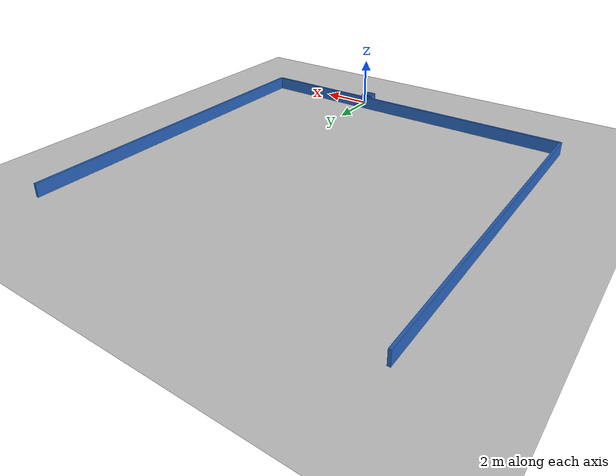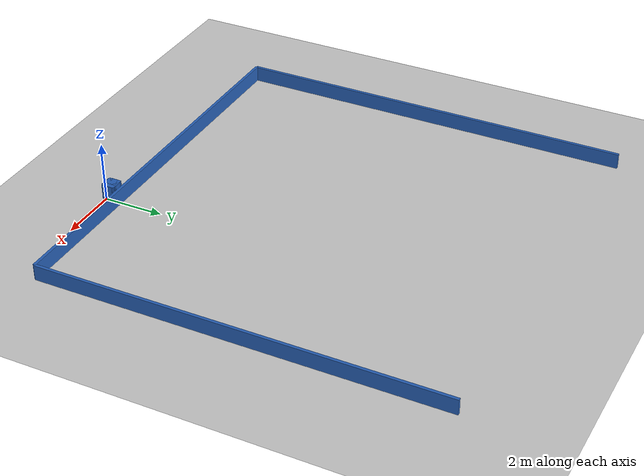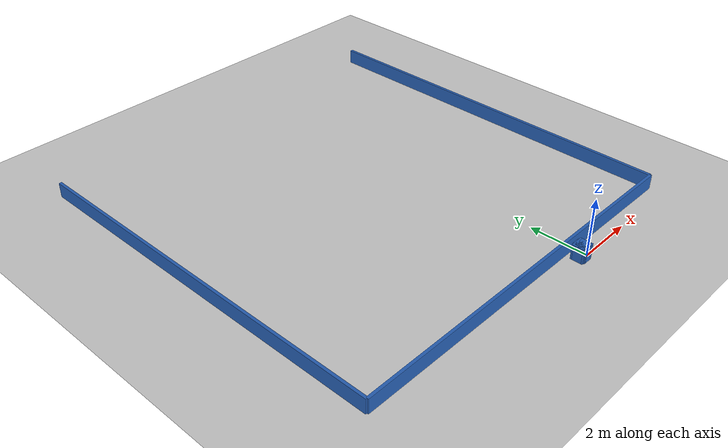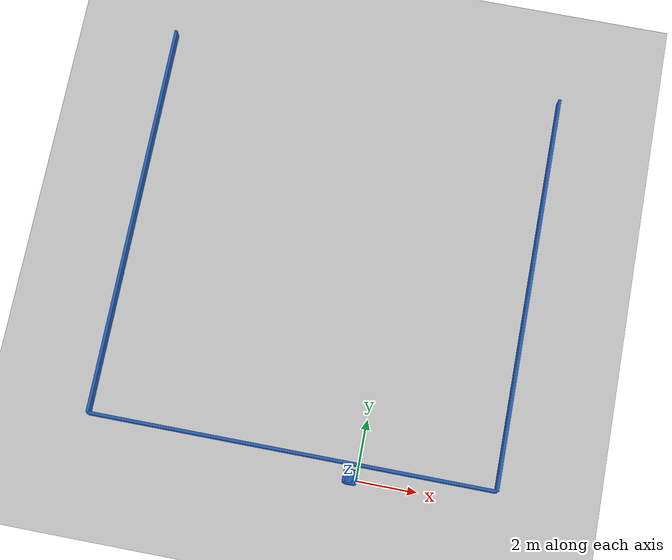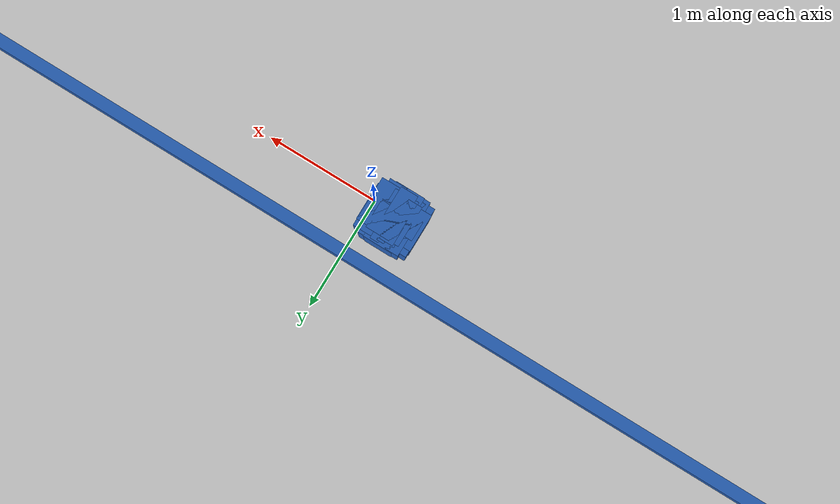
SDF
<?xml version="1.0" ?>
    <sdf version="1.5">
      <world name="default">
        <!-- A global light source -->
        <include>
          <uri>model://sun</uri>
        </include>
        <!-- A ground plane -->
        <include>
          <uri>model://ground_plane</uri>
        </include>

    <model name='libopen_space_final_T2B_119_99'>
      <static>1</static>
      <pose frame=''>-0.225000 0.075000 0.000000 0.000000 0.000000 0.000000</pose>
      <link name='link'>
        <inertial>
          <mass>1</mass>
          <inertia>
            <ixx>0.145833</ixx>
            <ixy>0</ixy>
            <ixz>0</ixz>
            <iyy>0.145833</iyy>
            <iyz>0</iyz>
            <izz>0.125</izz>
          </inertia>
        </inertial>
        <collision name='collision'>
          <geometry>
            <box>
              <size>0.20 0.35 1</size>
            </box>
          </geometry>
          <max_contacts>10</max_contacts>
          <surface>
            <contact>
              <ode/>
            </contact>
            <bounce/>
            <friction>
              <torsional>
                <ode/>
              </torsional>
              <ode/>
            </friction>
          </surface>
        </collision>
        <visual name='visual'>
          <geometry>
            <box>
              <size>0.20 0.35 1</size>
            </box>
          </geometry>
	    <material>
              <ambient>0.152000 0.379000 0.720000 1</ambient>
	      <diffuse>0.152000 0.379000 0.720000 1</diffuse>
          </material>
          <material>
            <script>
              <name>Gazebo/Grey</name>
              <uri>file://media/materials/scripts/gazebo.material</uri>
            </script>
          </material>
        </visual>
        <self_collide>0</self_collide>
        <kinematic>0</kinematic>
        <gravity>1</gravity>
      </link>
      <plugin name='libopen_space_final_T2B_119_99' filename='libopen_space_final_T2B_119_99.so'/>
    </model>

    <model name='libopen_space_final_T2B_109_60'>
      <static>1</static>
      <pose frame=''>-0.225000 0.075000 0.000000 0.000000 0.000000 0.000000</pose>
      <link name='link'>
        <inertial>
          <mass>1</mass>
          <inertia>
            <ixx>0.145833</ixx>
            <ixy>0</ixy>
            <ixz>0</ixz>
            <iyy>0.145833</iyy>
            <iyz>0</iyz>
            <izz>0.125</izz>
          </inertia>
        </inertial>
        <collision name='collision'>
          <geometry>
            <box>
              <size>0.47 0.43 1</size>
            </box>
          </geometry>
          <max_contacts>10</max_contacts>
          <surface>
            <contact>
              <ode/>
            </contact>
            <bounce/>
            <friction>
              <torsional>
                <ode/>
              </torsional>
              <ode/>
            </friction>
          </surface>
        </collision>
        <visual name='visual'>
          <geometry>
            <box>
              <size>0.47 0.43 1</size>
            </box>
          </geometry>
	    <material>
              <ambient>0.152000 0.379000 0.720000 1</ambient>
	      <diffuse>0.152000 0.379000 0.720000 1</diffuse>
          </material>
          <material>
            <script>
              <name>Gazebo/Grey</name>
              <uri>file://media/materials/scripts/gazebo.material</uri>
            </script>
          </material>
        </visual>
        <self_collide>0</self_collide>
        <kinematic>0</kinematic>
        <gravity>1</gravity>
      </link>
      <plugin name='libopen_space_final_T2B_109_60' filename='libopen_space_final_T2B_109_60.so'/>
    </model>

    <model name='libopen_space_final_T2B_122_30'>
      <static>1</static>
      <pose frame=''>-0.225000 0.075000 0.000000 0.000000 0.000000 0.000000</pose>
      <link name='link'>
        <inertial>
          <mass>1</mass>
          <inertia>
            <ixx>0.145833</ixx>
            <ixy>0</ixy>
            <ixz>0</ixz>
            <iyy>0.145833</iyy>
            <iyz>0</iyz>
            <izz>0.125</izz>
          </inertia>
        </inertial>
        <collision name='collision'>
          <geometry>
            <box>
              <size>0.30 0.23 1</size>
            </box>
          </geometry>
          <max_contacts>10</max_contacts>
          <surface>
            <contact>
              <ode/>
            </contact>
            <bounce/>
            <friction>
              <torsional>
                <ode/>
              </torsional>
              <ode/>
            </friction>
          </surface>
        </collision>
        <visual name='visual'>
          <geometry>
            <box>
              <size>0.30 0.23 1</size>
            </box>
          </geometry>
	    <material>
              <ambient>0.152000 0.379000 0.720000 1</ambient>
	      <diffuse>0.152000 0.379000 0.720000 1</diffuse>
          </material>
          <material>
            <script>
              <name>Gazebo/Grey</name>
              <uri>file://media/materials/scripts/gazebo.material</uri>
            </script>
          </material>
        </visual>
        <self_collide>0</self_collide>
        <kinematic>0</kinematic>
        <gravity>1</gravity>
      </link>
      <plugin name='libopen_space_final_T2B_122_30' filename='libopen_space_final_T2B_122_30.so'/>
    </model>

    <model name='libopen_space_final_T2B_118_50'>
      <static>1</static>
      <pose frame=''>-0.225000 0.075000 0.000000 0.000000 0.000000 0.000000</pose>
      <link name='link'>
        <inertial>
          <mass>1</mass>
          <inertia>
            <ixx>0.145833</ixx>
            <ixy>0</ixy>
            <ixz>0</ixz>
            <iyy>0.145833</iyy>
            <iyz>0</iyz>
            <izz>0.125</izz>
          </inertia>
        </inertial>
        <collision name='collision'>
          <geometry>
            <box>
              <size>0.29 0.35 1</size>
            </box>
          </geometry>
          <max_contacts>10</max_contacts>
          <surface>
            <contact>
              <ode/>
            </contact>
            <bounce/>
            <friction>
              <torsional>
                <ode/>
              </torsional>
              <ode/>
            </friction>
          </surface>
        </collision>
        <visual name='visual'>
          <geometry>
            <box>
              <size>0.29 0.35 1</size>
            </box>
          </geometry>
	    <material>
              <ambient>0.152000 0.379000 0.720000 1</ambient>
	      <diffuse>0.152000 0.379000 0.720000 1</diffuse>
          </material>
          <material>
            <script>
              <name>Gazebo/Grey</name>
              <uri>file://media/materials/scripts/gazebo.material</uri>
            </script>
          </material>
        </visual>
        <self_collide>0</self_collide>
        <kinematic>0</kinematic>
        <gravity>1</gravity>
      </link>
      <plugin name='libopen_space_final_T2B_118_50' filename='libopen_space_final_T2B_118_50.so'/>
    </model>

    <model name='libopen_space_final_T2B_115_72'>
      <static>1</static>
      <pose frame=''>-0.225000 0.075000 0.000000 0.000000 0.000000 0.000000</pose>
      <link name='link'>
        <inertial>
          <mass>1</mass>
          <inertia>
            <ixx>0.145833</ixx>
            <ixy>0</ixy>
            <ixz>0</ixz>
            <iyy>0.145833</iyy>
            <iyz>0</iyz>
            <izz>0.125</izz>
          </inertia>
        </inertial>
        <collision name='collision'>
          <geometry>
            <box>
              <size>0.42 0.17 1</size>
            </box>
          </geometry>
          <max_contacts>10</max_contacts>
          <surface>
            <contact>
              <ode/>
            </contact>
            <bounce/>
            <friction>
              <torsional>
                <ode/>
              </torsional>
              <ode/>
            </friction>
          </surface>
        </collision>
        <visual name='visual'>
          <geometry>
            <box>
              <size>0.42 0.17 1</size>
            </box>
          </geometry>
	    <material>
              <ambient>0.152000 0.379000 0.720000 1</ambient>
	      <diffuse>0.152000 0.379000 0.720000 1</diffuse>
          </material>
          <material>
            <script>
              <name>Gazebo/Grey</name>
              <uri>file://media/materials/scripts/gazebo.material</uri>
            </script>
          </material>
        </visual>
        <self_collide>0</self_collide>
        <kinematic>0</kinematic>
        <gravity>1</gravity>
      </link>
      <plugin name='libopen_space_final_T2B_115_72' filename='libopen_space_final_T2B_115_72.so'/>
    </model>

    <model name='libopen_space_final_T2B_77_83'>
      <static>1</static>
      <pose frame=''>-0.225000 0.075000 0.000000 0.000000 0.000000 0.000000</pose>
      <link name='link'>
        <inertial>
          <mass>1</mass>
          <inertia>
            <ixx>0.145833</ixx>
            <ixy>0</ixy>
            <ixz>0</ixz>
            <iyy>0.145833</iyy>
            <iyz>0</iyz>
            <izz>0.125</izz>
          </inertia>
        </inertial>
        <collision name='collision'>
          <geometry>
            <box>
              <size>0.25 0.49 1</size>
            </box>
          </geometry>
          <max_contacts>10</max_contacts>
          <surface>
            <contact>
              <ode/>
            </contact>
            <bounce/>
            <friction>
              <torsional>
                <ode/>
              </torsional>
              <ode/>
            </friction>
          </surface>
        </collision>
        <visual name='visual'>
          <geometry>
            <box>
              <size>0.25 0.49 1</size>
            </box>
          </geometry>
	    <material>
              <ambient>0.152000 0.379000 0.720000 1</ambient>
	      <diffuse>0.152000 0.379000 0.720000 1</diffuse>
          </material>
          <material>
            <script>
              <name>Gazebo/Grey</name>
              <uri>file://media/materials/scripts/gazebo.material</uri>
            </script>
          </material>
        </visual>
        <self_collide>0</self_collide>
        <kinematic>0</kinematic>
        <gravity>1</gravity>
      </link>
      <plugin name='libopen_space_final_T2B_77_83' filename='libopen_space_final_T2B_77_83.so'/>
    </model>

    <model name='libopen_space_final_T2B_81_4'>
      <static>1</static>
      <pose frame=''>-0.225000 0.075000 0.000000 0.000000 0.000000 0.000000</pose>
      <link name='link'>
        <inertial>
          <mass>1</mass>
          <inertia>
            <ixx>0.145833</ixx>
            <ixy>0</ixy>
            <ixz>0</ixz>
            <iyy>0.145833</iyy>
            <iyz>0</iyz>
            <izz>0.125</izz>
          </inertia>
        </inertial>
        <collision name='collision'>
          <geometry>
            <box>
              <size>0.15 0.46 1</size>
            </box>
          </geometry>
          <max_contacts>10</max_contacts>
          <surface>
            <contact>
              <ode/>
            </contact>
            <bounce/>
            <friction>
              <torsional>
                <ode/>
              </torsional>
              <ode/>
            </friction>
          </surface>
        </collision>
        <visual name='visual'>
          <geometry>
            <box>
              <size>0.15 0.46 1</size>
            </box>
          </geometry>
	    <material>
              <ambient>0.152000 0.379000 0.720000 1</ambient>
	      <diffuse>0.152000 0.379000 0.720000 1</diffuse>
          </material>
          <material>
            <script>
              <name>Gazebo/Grey</name>
              <uri>file://media/materials/scripts/gazebo.material</uri>
            </script>
          </material>
        </visual>
        <self_collide>0</self_collide>
        <kinematic>0</kinematic>
        <gravity>1</gravity>
      </link>
      <plugin name='libopen_space_final_T2B_81_4' filename='libopen_space_final_T2B_81_4.so'/>
    </model>

    <model name='libopen_space_final_T2B_51_1'>
      <static>1</static>
      <pose frame=''>-0.225000 0.075000 0.000000 0.000000 0.000000 0.000000</pose>
      <link name='link'>
        <inertial>
          <mass>1</mass>
          <inertia>
            <ixx>0.145833</ixx>
            <ixy>0</ixy>
            <ixz>0</ixz>
            <iyy>0.145833</iyy>
            <iyz>0</iyz>
            <izz>0.125</izz>
          </inertia>
        </inertial>
        <collision name='collision'>
          <geometry>
            <box>
              <size>0.21 0.39 1</size>
            </box>
          </geometry>
          <max_contacts>10</max_contacts>
          <surface>
            <contact>
              <ode/>
            </contact>
            <bounce/>
            <friction>
              <torsional>
                <ode/>
              </torsional>
              <ode/>
            </friction>
          </surface>
        </collision>
        <visual name='visual'>
          <geometry>
            <box>
              <size>0.21 0.39 1</size>
            </box>
          </geometry>
	    <material>
              <ambient>0.152000 0.379000 0.720000 1</ambient>
	      <diffuse>0.152000 0.379000 0.720000 1</diffuse>
          </material>
          <material>
            <script>
              <name>Gazebo/Grey</name>
              <uri>file://media/materials/scripts/gazebo.material</uri>
            </script>
          </material>
        </visual>
        <self_collide>0</self_collide>
        <kinematic>0</kinematic>
        <gravity>1</gravity>
      </link>
      <plugin name='libopen_space_final_T2B_51_1' filename='libopen_space_final_T2B_51_1.so'/>
    </model>

    <model name='libopen_space_final_T2B_55_44'>
      <static>1</static>
      <pose frame=''>-0.225000 0.075000 0.000000 0.000000 0.000000 0.000000</pose>
      <link name='link'>
        <inertial>
          <mass>1</mass>
          <inertia>
            <ixx>0.145833</ixx>
            <ixy>0</ixy>
            <ixz>0</ixz>
            <iyy>0.145833</iyy>
            <iyz>0</iyz>
            <izz>0.125</izz>
          </inertia>
        </inertial>
        <collision name='collision'>
          <geometry>
            <box>
              <size>0.16 0.34 1</size>
            </box>
          </geometry>
          <max_contacts>10</max_contacts>
          <surface>
            <contact>
              <ode/>
            </contact>
            <bounce/>
            <friction>
              <torsional>
                <ode/>
              </torsional>
              <ode/>
            </friction>
          </surface>
        </collision>
        <visual name='visual'>
          <geometry>
            <box>
              <size>0.16 0.34 1</size>
            </box>
          </geometry>
	    <material>
              <ambient>0.152000 0.379000 0.720000 1</ambient>
	      <diffuse>0.152000 0.379000 0.720000 1</diffuse>
          </material>
          <material>
            <script>
              <name>Gazebo/Grey</name>
              <uri>file://media/materials/scripts/gazebo.material</uri>
            </script>
          </material>
        </visual>
        <self_collide>0</self_collide>
        <kinematic>0</kinematic>
        <gravity>1</gravity>
      </link>
      <plugin name='libopen_space_final_T2B_55_44' filename='libopen_space_final_T2B_55_44.so'/>
    </model>

    <model name='libopen_space_final_T2B_67_47'>
      <static>1</static>
      <pose frame=''>-0.225000 0.075000 0.000000 0.000000 0.000000 0.000000</pose>
      <link name='link'>
        <inertial>
          <mass>1</mass>
          <inertia>
            <ixx>0.145833</ixx>
            <ixy>0</ixy>
            <ixz>0</ixz>
            <iyy>0.145833</iyy>
            <iyz>0</iyz>
            <izz>0.125</izz>
          </inertia>
        </inertial>
        <collision name='collision'>
          <geometry>
            <box>
              <size>0.36 0.48 1</size>
            </box>
          </geometry>
          <max_contacts>10</max_contacts>
          <surface>
            <contact>
              <ode/>
            </contact>
            <bounce/>
            <friction>
              <torsional>
                <ode/>
              </torsional>
              <ode/>
            </friction>
          </surface>
        </collision>
        <visual name='visual'>
          <geometry>
            <box>
              <size>0.36 0.48 1</size>
            </box>
          </geometry>
	    <material>
              <ambient>0.152000 0.379000 0.720000 1</ambient>
	      <diffuse>0.152000 0.379000 0.720000 1</diffuse>
          </material>
          <material>
            <script>
              <name>Gazebo/Grey</name>
              <uri>file://media/materials/scripts/gazebo.material</uri>
            </script>
          </material>
        </visual>
        <self_collide>0</self_collide>
        <kinematic>0</kinematic>
        <gravity>1</gravity>
      </link>
      <plugin name='libopen_space_final_T2B_67_47' filename='libopen_space_final_T2B_67_47.so'/>
    </model>

    <model name='libopen_space_final_T2B_122_2'>
      <static>1</static>
      <pose frame=''>-0.225000 0.075000 0.000000 0.000000 0.000000 0.000000</pose>
      <link name='link'>
        <inertial>
          <mass>1</mass>
          <inertia>
            <ixx>0.145833</ixx>
            <ixy>0</ixy>
            <ixz>0</ixz>
            <iyy>0.145833</iyy>
            <iyz>0</iyz>
            <izz>0.125</izz>
          </inertia>
        </inertial>
        <collision name='collision'>
          <geometry>
            <box>
              <size>0.34 0.15 1</size>
            </box>
          </geometry>
          <max_contacts>10</max_contacts>
          <surface>
            <contact>
              <ode/>
            </contact>
            <bounce/>
            <friction>
              <torsional>
                <ode/>
              </torsional>
              <ode/>
            </friction>
          </surface>
        </collision>
        <visual name='visual'>
          <geometry>
            <box>
              <size>0.34 0.15 1</size>
            </box>
          </geometry>
	    <material>
              <ambient>0.152000 0.379000 0.720000 1</ambient>
	      <diffuse>0.152000 0.379000 0.720000 1</diffuse>
          </material>
          <material>
            <script>
              <name>Gazebo/Grey</name>
              <uri>file://media/materials/scripts/gazebo.material</uri>
            </script>
          </material>
        </visual>
        <self_collide>0</self_collide>
        <kinematic>0</kinematic>
        <gravity>1</gravity>
      </link>
      <plugin name='libopen_space_final_T2B_122_2' filename='libopen_space_final_T2B_122_2.so'/>
    </model>

    <model name='libopen_space_final_T2B_57_10'>
      <static>1</static>
      <pose frame=''>-0.225000 0.075000 0.000000 0.000000 0.000000 0.000000</pose>
      <link name='link'>
        <inertial>
          <mass>1</mass>
          <inertia>
            <ixx>0.145833</ixx>
            <ixy>0</ixy>
            <ixz>0</ixz>
            <iyy>0.145833</iyy>
            <iyz>0</iyz>
            <izz>0.125</izz>
          </inertia>
        </inertial>
        <collision name='collision'>
          <geometry>
            <box>
              <size>0.48 0.32 1</size>
            </box>
          </geometry>
          <max_contacts>10</max_contacts>
          <surface>
            <contact>
              <ode/>
            </contact>
            <bounce/>
            <friction>
              <torsional>
                <ode/>
              </torsional>
              <ode/>
            </friction>
          </surface>
        </collision>
        <visual name='visual'>
          <geometry>
            <box>
              <size>0.48 0.32 1</size>
            </box>
          </geometry>
	    <material>
              <ambient>0.152000 0.379000 0.720000 1</ambient>
	      <diffuse>0.152000 0.379000 0.720000 1</diffuse>
          </material>
          <material>
            <script>
              <name>Gazebo/Grey</name>
              <uri>file://media/materials/scripts/gazebo.material</uri>
            </script>
          </material>
        </visual>
        <self_collide>0</self_collide>
        <kinematic>0</kinematic>
        <gravity>1</gravity>
      </link>
      <plugin name='libopen_space_final_T2B_57_10' filename='libopen_space_final_T2B_57_10.so'/>
    </model>

        <model name='bottom_wall'>
          <static>1</static>
          <pose frame=''>-2.25 0.5 0.000000 0.000000 0.000000 1.57079632</pose>
          <link name='link'>
            <inertial>
            <mass>1</mass>
            <inertia>
              <ixx>0.145833</ixx>
              <ixy>0</ixy>
              <ixz>0</ixz>
              <iyy>0.145833</iyy>
              <iyz>0</iyz>
              <izz>0.125</izz>
            </inertia>
            </inertial>
            <collision name='collision'>
            <geometry>
              <box>
              <size>0.1 13.5 1</size>
              </box>
            </geometry>
            <max_contacts>10</max_contacts>
            <surface>
              <contact>
              <ode/>
              </contact>
              <bounce/>
              <friction>
              <torsional>
                <ode/>
              </torsional>
              <ode/>
              </friction>
            </surface>
            </collision>
            <visual name='visual'>
            <geometry>
              <box>
              <size>0.1 13.5 1</size>
              </box>
            </geometry>
            <material>
              <ambient>0.152000 0.379000 0.720000 1</ambient>
            <diffuse>0.152000 0.379000 0.720000 1</diffuse>
            </material>
            <material>
              <script>
              <name>Gazebo/Grey</name>
              <uri>file://media/materials/scripts/gazebo.material</uri>
              </script>
            </material>
            </visual>
            <self_collide>0</self_collide>
            <kinematic>0</kinematic>
            <gravity>1</gravity>
          </link>
        </model>

        <model name='left_wall'>
          <static>1</static>
          <pose frame=''>-9 7.25 0.000000 0.000000 0.000000 0.000000</pose>
          <link name='link'>
            <inertial>
            <mass>1</mass>
            <inertia>
              <ixx>0.145833</ixx>
              <ixy>0</ixy>
              <ixz>0</ixz>
              <iyy>0.145833</iyy>
              <iyz>0</iyz>
              <izz>0.125</izz>
            </inertia>
            </inertial>
            <collision name='collision'>
            <geometry>
              <box>
              <size>0.1 13.5 1</size>
              </box>
            </geometry>
            <max_contacts>10</max_contacts>
            <surface>
              <contact>
              <ode/>
              </contact>
              <bounce/>
              <friction>
              <torsional>
                <ode/>
              </torsional>
              <ode/>
              </friction>
            </surface>
            </collision>
            <visual name='visual'>
            <geometry>
              <box>
              <size>0.1 13.5 1</size>
              </box>
            </geometry>
            <material>
              <ambient>0.152000 0.379000 0.720000 1</ambient>
            <diffuse>0.152000 0.379000 0.720000 1</diffuse>
            </material>
            <material>
              <script>
              <name>Gazebo/Grey</name>
              <uri>file://media/materials/scripts/gazebo.material</uri>
              </script>
            </material>
            </visual>
            <self_collide>0</self_collide>
            <kinematic>0</kinematic>
            <gravity>1</gravity>
          </link>
        </model>

        <model name='right_wall'>
          <static>1</static>
          <pose frame=''>4.5 7.25 0.000000 0.000000 0.000000 0.000000</pose>
          <link name='link'>
            <inertial>
            <mass>1</mass>
            <inertia>
              <ixx>0.145833</ixx>
              <ixy>0</ixy>
              <ixz>0</ixz>
              <iyy>0.145833</iyy>
              <iyz>0</iyz>
              <izz>0.125</izz>
            </inertia>
            </inertial>
            <collision name='collision'>
            <geometry>
              <box>
              <size>0.1 13.5 1</size>
              </box>
            </geometry>
            <max_contacts>10</max_contacts>
            <surface>
              <contact>
              <ode/>
              </contact>
              <bounce/>
              <friction>
              <torsional>
                <ode/>
              </torsional>
              <ode/>
              </friction>
            </surface>
            </collision>
            <visual name='visual'>
            <geometry>
              <box>
              <size>0.1 13.5 1</size>
              </box>
            </geometry>
            <material>
              <ambient>0.152000 0.379000 0.720000 1</ambient>
            <diffuse>0.152000 0.379000 0.720000 1</diffuse>
            </material>
            <material>
              <script>
              <name>Gazebo/Grey</name>
              <uri>file://media/materials/scripts/gazebo.material</uri>
              </script>
            </material>
            </visual>
            <self_collide>0</self_collide>
            <kinematic>0</kinematic>
            <gravity>1</gravity>
          </link>
        </model>

      </world>
    </sdf>"
